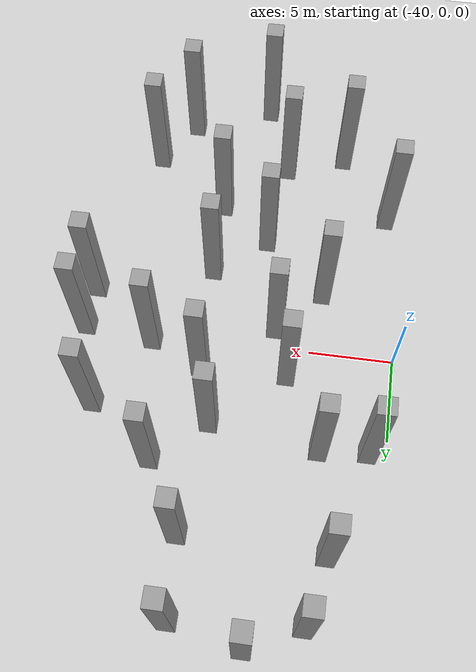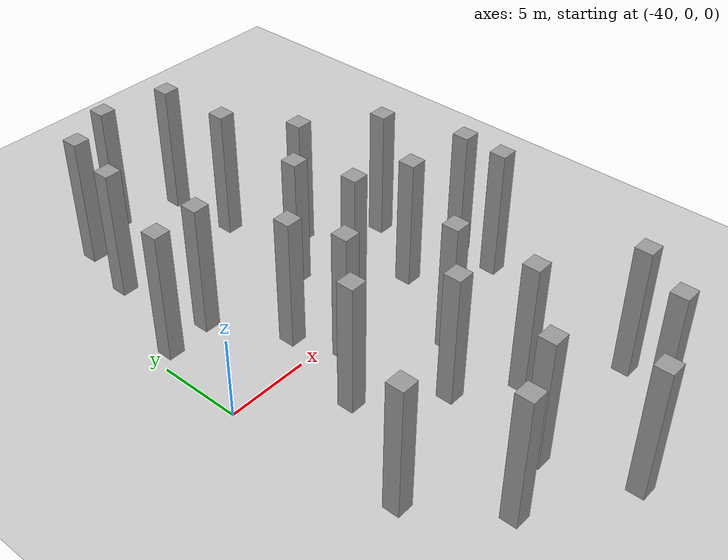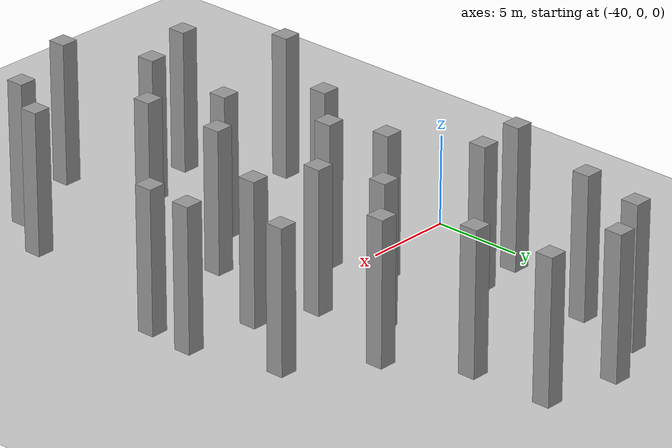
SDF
<sdf version="1.7">
 <world name="default">
  <model name="ground_plane">
   <static>1</static>
   <link name="link">
    <collision name="collision">
     <geometry><plane><normal>0 0 1</normal><size>100 100</size></plane></geometry>
     <surface>
      <contact><collide_bitmask>65535</collide_bitmask></contact>
      <friction><ode><mu>100</mu><mu2>50</mu2></ode></friction>
     </surface>
    </collision>
    <visual name="visual">
     <cast_shadows>0</cast_shadows>
     <geometry><plane><normal>0 0 1</normal><size>100 100</size></plane></geometry>
     <material>
      <script><uri>file://media/materials/scripts/gazebo.material</uri><name>Gazebo/Grey</name></script>
     </material>
    </visual>
   </link>
  </model>
  <model name="unit_box_static12">
   <link name="link">
    <inertial>
     <mass>1</mass>
     <inertia>
      <ixx>0.166667</ixx>
      <ixy>0</ixy>
      <ixz>0</ixz>
      <iyy>0.166667</iyy>
      <iyz>0</iyz>
      <izz>0.166667</izz>
     </inertia>
    </inertial>
    <visual name="visual">
     <geometry><box><size>1 1 8</size></box></geometry>
     <material>
      <script><name>Gazebo/Grey</name><uri>file://media/materials/scripts/gazebo.material</uri></script>
      <shader type="pixel"/>
     </material>
    </visual>
    <collision name="collision">
     <geometry><box><size>1 1 8</size></box></geometry>
     <surface>
      <friction>
       <ode><mu>1</mu><mu2>1</mu2><fdir1>0 0 0</fdir1><slip1>0</slip1><slip2>0</slip2></ode>
       <torsional>
        <coefficient>1</coefficient>
        <patch_radius>0</patch_radius>
        <surface_radius>0</surface_radius>
        <use_patch_radius>1</use_patch_radius>
        <ode><slip>0</slip></ode>
       </torsional>
      </friction>
      <bounce><restitution_coefficient>0</restitution_coefficient><threshold>1e+06</threshold></bounce>
      <contact>
       <collide_without_contact>0</collide_without_contact>
       <collide_without_contact_bitmask>1</collide_without_contact_bitmask>
       <collide_bitmask>1</collide_bitmask>
       <ode>
        <soft_cfm>0</soft_cfm>
        <soft_erp>0.2</soft_erp>
        <kp>1e+13</kp>
        <kd>1</kd>
        <max_vel>0.01</max_vel>
        <min_depth>0</min_depth>
       </ode>
       <bullet>
        <split_impulse>1</split_impulse>
        <split_impulse_penetration_threshold>-0.01</split_impulse_penetration_threshold>
        <soft_cfm>0</soft_cfm>
        <soft_erp>0.2</soft_erp>
        <kp>1e+13</kp>
        <kd>1</kd>
       </bullet>
      </contact>
     </surface>
    </collision>
   </link>
   <static>1</static>
   <pose>-32.8019 -1.19253 4 0 -0 0</pose>
  </model>
  <model name="unit_box_static14">
   <link name="link">
    <inertial>
     <mass>1</mass>
     <inertia>
      <ixx>0.166667</ixx>
      <ixy>0</ixy>
      <ixz>0</ixz>
      <iyy>0.166667</iyy>
      <iyz>0</iyz>
      <izz>0.166667</izz>
     </inertia>
    </inertial>
    <visual name="visual">
     <geometry><box><size>1 1 8</size></box></geometry>
     <material>
      <script><name>Gazebo/Grey</name><uri>file://media/materials/scripts/gazebo.material</uri></script>
      <shader type="pixel"/>
     </material>
    </visual>
    <collision name="collision">
     <geometry><box><size>1 1 8</size></box></geometry>
     <surface>
      <friction>
       <ode><mu>1</mu><mu2>1</mu2><fdir1>0 0 0</fdir1><slip1>0</slip1><slip2>0</slip2></ode>
       <torsional>
        <coefficient>1</coefficient>
        <patch_radius>0</patch_radius>
        <surface_radius>0</surface_radius>
        <use_patch_radius>1</use_patch_radius>
        <ode><slip>0</slip></ode>
       </torsional>
      </friction>
      <bounce><restitution_coefficient>0</restitution_coefficient><threshold>1e+06</threshold></bounce>
      <contact>
       <collide_without_contact>0</collide_without_contact>
       <collide_without_contact_bitmask>1</collide_without_contact_bitmask>
       <collide_bitmask>1</collide_bitmask>
       <ode>
        <soft_cfm>0</soft_cfm>
        <soft_erp>0.2</soft_erp>
        <kp>1e+13</kp>
        <kd>1</kd>
        <max_vel>0.01</max_vel>
        <min_depth>0</min_depth>
       </ode>
       <bullet>
        <split_impulse>1</split_impulse>
        <split_impulse_penetration_threshold>-0.01</split_impulse_penetration_threshold>
        <soft_cfm>0</soft_cfm>
        <soft_erp>0.2</soft_erp>
        <kp>1e+13</kp>
        <kd>1</kd>
       </bullet>
      </contact>
     </surface>
    </collision>
   </link>
   <static>1</static>
   <pose>-36.078 6.13677 4 0 -0 0</pose>
  </model>
  <model name="unit_box_static15">
   <link name="link">
    <inertial>
     <mass>1</mass>
     <inertia>
      <ixx>0.166667</ixx>
      <ixy>0</ixy>
      <ixz>0</ixz>
      <iyy>0.166667</iyy>
      <iyz>0</iyz>
      <izz>0.166667</izz>
     </inertia>
    </inertial>
    <visual name="visual">
     <geometry><box><size>1 1 8</size></box></geometry>
     <material>
      <script><name>Gazebo/Grey</name><uri>file://media/materials/scripts/gazebo.material</uri></script>
      <shader type="pixel"/>
     </material>
    </visual>
    <collision name="collision">
     <geometry><box><size>1 1 8</size></box></geometry>
     <surface>
      <friction>
       <ode><mu>1</mu><mu2>1</mu2><fdir1>0 0 0</fdir1><slip1>0</slip1><slip2>0</slip2></ode>
       <torsional>
        <coefficient>1</coefficient>
        <patch_radius>0</patch_radius>
        <surface_radius>0</surface_radius>
        <use_patch_radius>1</use_patch_radius>
        <ode><slip>0</slip></ode>
       </torsional>
      </friction>
      <bounce><restitution_coefficient>0</restitution_coefficient><threshold>1e+06</threshold></bounce>
      <contact>
       <collide_without_contact>0</collide_without_contact>
       <collide_without_contact_bitmask>1</collide_without_contact_bitmask>
       <collide_bitmask>1</collide_bitmask>
       <ode>
        <soft_cfm>0</soft_cfm>
        <soft_erp>0.2</soft_erp>
        <kp>1e+13</kp>
        <kd>1</kd>
        <max_vel>0.01</max_vel>
        <min_depth>0</min_depth>
       </ode>
       <bullet>
        <split_impulse>1</split_impulse>
        <split_impulse_penetration_threshold>-0.01</split_impulse_penetration_threshold>
        <soft_cfm>0</soft_cfm>
        <soft_erp>0.2</soft_erp>
        <kp>1e+13</kp>
        <kd>1</kd>
       </bullet>
      </contact>
     </surface>
    </collision>
   </link>
   <static>1</static>
   <pose>-38.8814 5.91738 4 0 -0 0</pose>
  </model>
  <model name="unit_box_static28">
   <link name="link">
    <inertial>
     <mass>1</mass>
     <inertia>
      <ixx>0.166667</ixx>
      <ixy>0</ixy>
      <ixz>0</ixz>
      <iyy>0.166667</iyy>
      <iyz>0</iyz>
      <izz>0.166667</izz>
     </inertia>
    </inertial>
    <visual name="visual">
     <geometry><box><size>1 1 8</size></box></geometry>
     <material>
      <script><name>Gazebo/Grey</name><uri>file://media/materials/scripts/gazebo.material</uri></script>
      <shader type="pixel"/>
     </material>
    </visual>
    <collision name="collision">
     <geometry><box><size>1 1 8</size></box></geometry>
     <surface>
      <friction>
       <ode><mu>1</mu><mu2>1</mu2><fdir1>0 0 0</fdir1><slip1>0</slip1><slip2>0</slip2></ode>
       <torsional>
        <coefficient>1</coefficient>
        <patch_radius>0</patch_radius>
        <surface_radius>0</surface_radius>
        <use_patch_radius>1</use_patch_radius>
        <ode><slip>0</slip></ode>
       </torsional>
      </friction>
      <bounce><restitution_coefficient>0</restitution_coefficient><threshold>1e+06</threshold></bounce>
      <contact>
       <collide_without_contact>0</collide_without_contact>
       <collide_without_contact_bitmask>1</collide_without_contact_bitmask>
       <collide_bitmask>1</collide_bitmask>
       <ode>
        <soft_cfm>0</soft_cfm>
        <soft_erp>0.2</soft_erp>
        <kp>1e+13</kp>
        <kd>1</kd>
        <max_vel>0.01</max_vel>
        <min_depth>0</min_depth>
       </ode>
       <bullet>
        <split_impulse>1</split_impulse>
        <split_impulse_penetration_threshold>-0.01</split_impulse_penetration_threshold>
        <soft_cfm>0</soft_cfm>
        <soft_erp>0.2</soft_erp>
        <kp>1e+13</kp>
        <kd>1</kd>
       </bullet>
      </contact>
     </surface>
    </collision>
   </link>
   <static>1</static>
   <pose>-29.1425 16.2735 4 0 -0 0</pose>
  </model>
  <model name="unit_box_static34">
   <link name="link">
    <inertial>
     <mass>1</mass>
     <inertia>
      <ixx>0.166667</ixx>
      <ixy>0</ixy>
      <ixz>0</ixz>
      <iyy>0.166667</iyy>
      <iyz>0</iyz>
      <izz>0.166667</izz>
     </inertia>
    </inertial>
    <visual name="visual">
     <geometry><box><size>1 1 8</size></box></geometry>
     <material>
      <script><name>Gazebo/Grey</name><uri>file://media/materials/scripts/gazebo.material</uri></script>
      <shader type="pixel"/>
     </material>
    </visual>
    <collision name="collision">
     <geometry><box><size>1 1 8</size></box></geometry>
     <surface>
      <friction>
       <ode><mu>1</mu><mu2>1</mu2><fdir1>0 0 0</fdir1><slip1>0</slip1><slip2>0</slip2></ode>
       <torsional>
        <coefficient>1</coefficient>
        <patch_radius>0</patch_radius>
        <surface_radius>0</surface_radius>
        <use_patch_radius>1</use_patch_radius>
        <ode><slip>0</slip></ode>
       </torsional>
      </friction>
      <bounce><restitution_coefficient>0</restitution_coefficient><threshold>1e+06</threshold></bounce>
      <contact>
       <collide_without_contact>0</collide_without_contact>
       <collide_without_contact_bitmask>1</collide_without_contact_bitmask>
       <collide_bitmask>1</collide_bitmask>
       <ode>
        <soft_cfm>0</soft_cfm>
        <soft_erp>0.2</soft_erp>
        <kp>1e+13</kp>
        <kd>1</kd>
        <max_vel>0.01</max_vel>
        <min_depth>0</min_depth>
       </ode>
       <bullet>
        <split_impulse>1</split_impulse>
        <split_impulse_penetration_threshold>-0.01</split_impulse_penetration_threshold>
        <soft_cfm>0</soft_cfm>
        <soft_erp>0.2</soft_erp>
        <kp>1e+13</kp>
        <kd>1</kd>
       </bullet>
      </contact>
     </surface>
    </collision>
   </link>
   <static>1</static>
   <pose>-21.5943 -2.63548 4 0 -0 0</pose>
  </model>
  <model name="unit_box_static35">
   <link name="link">
    <inertial>
     <mass>1</mass>
     <inertia>
      <ixx>0.166667</ixx>
      <ixy>0</ixy>
      <ixz>0</ixz>
      <iyy>0.166667</iyy>
      <iyz>0</iyz>
      <izz>0.166667</izz>
     </inertia>
    </inertial>
    <visual name="visual">
     <geometry><box><size>1 1 8</size></box></geometry>
     <material>
      <script><name>Gazebo/Grey</name><uri>file://media/materials/scripts/gazebo.material</uri></script>
      <shader type="pixel"/>
     </material>
    </visual>
    <collision name="collision">
     <geometry><box><size>1 1 8</size></box></geometry>
     <surface>
      <friction>
       <ode><mu>1</mu><mu2>1</mu2><fdir1>0 0 0</fdir1><slip1>0</slip1><slip2>0</slip2></ode>
       <torsional>
        <coefficient>1</coefficient>
        <patch_radius>0</patch_radius>
        <surface_radius>0</surface_radius>
        <use_patch_radius>1</use_patch_radius>
        <ode><slip>0</slip></ode>
       </torsional>
      </friction>
      <bounce><restitution_coefficient>0</restitution_coefficient><threshold>1e+06</threshold></bounce>
      <contact>
       <collide_without_contact>0</collide_without_contact>
       <collide_without_contact_bitmask>1</collide_without_contact_bitmask>
       <collide_bitmask>1</collide_bitmask>
       <ode>
        <soft_cfm>0</soft_cfm>
        <soft_erp>0.2</soft_erp>
        <kp>1e+13</kp>
        <kd>1</kd>
        <max_vel>0.01</max_vel>
        <min_depth>0</min_depth>
       </ode>
       <bullet>
        <split_impulse>1</split_impulse>
        <split_impulse_penetration_threshold>-0.01</split_impulse_penetration_threshold>
        <soft_cfm>0</soft_cfm>
        <soft_erp>0.2</soft_erp>
        <kp>1e+13</kp>
        <kd>1</kd>
       </bullet>
      </contact>
     </surface>
    </collision>
   </link>
   <static>1</static>
   <pose>-35.425 -3.92188 4 0 -0 0</pose>
  </model>
  <model name="unit_box_static38">
   <link name="link">
    <inertial>
     <mass>1</mass>
     <inertia>
      <ixx>0.166667</ixx>
      <ixy>0</ixy>
      <ixz>0</ixz>
      <iyy>0.166667</iyy>
      <iyz>0</iyz>
      <izz>0.166667</izz>
     </inertia>
    </inertial>
    <visual name="visual">
     <geometry><box><size>1 1 8</size></box></geometry>
     <material>
      <script><name>Gazebo/Grey</name><uri>file://media/materials/scripts/gazebo.material</uri></script>
      <shader type="pixel"/>
     </material>
    </visual>
    <collision name="collision">
     <geometry><box><size>1 1 8</size></box></geometry>
     <surface>
      <friction>
       <ode><mu>1</mu><mu2>1</mu2><fdir1>0 0 0</fdir1><slip1>0</slip1><slip2>0</slip2></ode>
       <torsional>
        <coefficient>1</coefficient>
        <patch_radius>0</patch_radius>
        <surface_radius>0</surface_radius>
        <use_patch_radius>1</use_patch_radius>
        <ode><slip>0</slip></ode>
       </torsional>
      </friction>
      <bounce><restitution_coefficient>0</restitution_coefficient><threshold>1e+06</threshold></bounce>
      <contact>
       <collide_without_contact>0</collide_without_contact>
       <collide_without_contact_bitmask>1</collide_without_contact_bitmask>
       <collide_bitmask>1</collide_bitmask>
       <ode>
        <soft_cfm>0</soft_cfm>
        <soft_erp>0.2</soft_erp>
        <kp>1e+13</kp>
        <kd>1</kd>
        <max_vel>0.01</max_vel>
        <min_depth>0</min_depth>
       </ode>
       <bullet>
        <split_impulse>1</split_impulse>
        <split_impulse_penetration_threshold>-0.01</split_impulse_penetration_threshold>
        <soft_cfm>0</soft_cfm>
        <soft_erp>0.2</soft_erp>
        <kp>1e+13</kp>
        <kd>1</kd>
       </bullet>
      </contact>
     </surface>
    </collision>
   </link>
   <static>1</static>
   <pose>-35.939 -14.3518 4 0 -0 0</pose>
  </model>
  <model name="unit_box_static57">
   <link name="link">
    <inertial>
     <mass>1</mass>
     <inertia>
      <ixx>0.166667</ixx>
      <ixy>0</ixy>
      <ixz>0</ixz>
      <iyy>0.166667</iyy>
      <iyz>0</iyz>
      <izz>0.166667</izz>
     </inertia>
    </inertial>
    <visual name="visual">
     <geometry><box><size>1 1 8</size></box></geometry>
     <material>
      <script><name>Gazebo/Grey</name><uri>file://media/materials/scripts/gazebo.material</uri></script>
      <shader type="pixel"/>
     </material>
    </visual>
    <collision name="collision">
     <geometry><box><size>1 1 8</size></box></geometry>
     <surface>
      <friction>
       <ode><mu>1</mu><mu2>1</mu2><fdir1>0 0 0</fdir1><slip1>0</slip1><slip2>0</slip2></ode>
       <torsional>
        <coefficient>1</coefficient>
        <patch_radius>0</patch_radius>
        <surface_radius>0</surface_radius>
        <use_patch_radius>1</use_patch_radius>
        <ode><slip>0</slip></ode>
       </torsional>
      </friction>
      <bounce><restitution_coefficient>0</restitution_coefficient><threshold>1e+06</threshold></bounce>
      <contact>
       <collide_without_contact>0</collide_without_contact>
       <collide_without_contact_bitmask>1</collide_without_contact_bitmask>
       <collide_bitmask>1</collide_bitmask>
       <ode>
        <soft_cfm>0</soft_cfm>
        <soft_erp>0.2</soft_erp>
        <kp>1e+13</kp>
        <kd>1</kd>
        <max_vel>0.01</max_vel>
        <min_depth>0</min_depth>
       </ode>
       <bullet>
        <split_impulse>1</split_impulse>
        <split_impulse_penetration_threshold>-0.01</split_impulse_penetration_threshold>
        <soft_cfm>0</soft_cfm>
        <soft_erp>0.2</soft_erp>
        <kp>1e+13</kp>
        <kd>1</kd>
       </bullet>
      </contact>
     </surface>
    </collision>
   </link>
   <static>1</static>
   <pose>-39.0012 -9.92582 4 0 -0 0</pose>
  </model>
  <model name="unit_box_static58">
   <link name="link">
    <inertial>
     <mass>1</mass>
     <inertia>
      <ixx>0.166667</ixx>
      <ixy>0</ixy>
      <ixz>0</ixz>
      <iyy>0.166667</iyy>
      <iyz>0</iyz>
      <izz>0.166667</izz>
     </inertia>
    </inertial>
    <visual name="visual">
     <geometry><box><size>1 1 8</size></box></geometry>
     <material>
      <script><name>Gazebo/Grey</name><uri>file://media/materials/scripts/gazebo.material</uri></script>
      <shader type="pixel"/>
     </material>
    </visual>
    <collision name="collision">
     <geometry><box><size>1 1 8</size></box></geometry>
     <surface>
      <friction>
       <ode><mu>1</mu><mu2>1</mu2><fdir1>0 0 0</fdir1><slip1>0</slip1><slip2>0</slip2></ode>
       <torsional>
        <coefficient>1</coefficient>
        <patch_radius>0</patch_radius>
        <surface_radius>0</surface_radius>
        <use_patch_radius>1</use_patch_radius>
        <ode><slip>0</slip></ode>
       </torsional>
      </friction>
      <bounce><restitution_coefficient>0</restitution_coefficient><threshold>1e+06</threshold></bounce>
      <contact>
       <collide_without_contact>0</collide_without_contact>
       <collide_without_contact_bitmask>1</collide_without_contact_bitmask>
       <collide_bitmask>1</collide_bitmask>
       <ode>
        <soft_cfm>0</soft_cfm>
        <soft_erp>0.2</soft_erp>
        <kp>1e+13</kp>
        <kd>1</kd>
        <max_vel>0.01</max_vel>
        <min_depth>0</min_depth>
       </ode>
       <bullet>
        <split_impulse>1</split_impulse>
        <split_impulse_penetration_threshold>-0.01</split_impulse_penetration_threshold>
        <soft_cfm>0</soft_cfm>
        <soft_erp>0.2</soft_erp>
        <kp>1e+13</kp>
        <kd>1</kd>
       </bullet>
      </contact>
     </surface>
    </collision>
   </link>
   <static>1</static>
   <pose>-28.6805 1.87924 4 0 -0 0</pose>
  </model>
  <model name="unit_box_static63">
   <link name="link">
    <inertial>
     <mass>1</mass>
     <inertia>
      <ixx>0.166667</ixx>
      <ixy>0</ixy>
      <ixz>0</ixz>
      <iyy>0.166667</iyy>
      <iyz>0</iyz>
      <izz>0.166667</izz>
     </inertia>
    </inertial>
    <visual name="visual">
     <geometry><box><size>1 1 8</size></box></geometry>
     <material>
      <script><name>Gazebo/Grey</name><uri>file://media/materials/scripts/gazebo.material</uri></script>
      <shader type="pixel"/>
     </material>
    </visual>
    <collision name="collision">
     <geometry><box><size>1 1 8</size></box></geometry>
     <surface>
      <friction>
       <ode><mu>1</mu><mu2>1</mu2><fdir1>0 0 0</fdir1><slip1>0</slip1><slip2>0</slip2></ode>
       <torsional>
        <coefficient>1</coefficient>
        <patch_radius>0</patch_radius>
        <surface_radius>0</surface_radius>
        <use_patch_radius>1</use_patch_radius>
        <ode><slip>0</slip></ode>
       </torsional>
      </friction>
      <bounce><restitution_coefficient>0</restitution_coefficient><threshold>1e+06</threshold></bounce>
      <contact>
       <collide_without_contact>0</collide_without_contact>
       <collide_without_contact_bitmask>1</collide_without_contact_bitmask>
       <collide_bitmask>1</collide_bitmask>
       <ode>
        <soft_cfm>0</soft_cfm>
        <soft_erp>0.2</soft_erp>
        <kp>1e+13</kp>
        <kd>1</kd>
        <max_vel>0.01</max_vel>
        <min_depth>0</min_depth>
       </ode>
       <bullet>
        <split_impulse>1</split_impulse>
        <split_impulse_penetration_threshold>-0.01</split_impulse_penetration_threshold>
        <soft_cfm>0</soft_cfm>
        <soft_erp>0.2</soft_erp>
        <kp>1e+13</kp>
        <kd>1</kd>
       </bullet>
      </contact>
     </surface>
    </collision>
   </link>
   <static>1</static>
   <pose>-28.5384 -4.7785 4 0 -0 0</pose>
  </model>
  <model name="unit_box_static67">
   <link name="link">
    <inertial>
     <mass>1</mass>
     <inertia>
      <ixx>0.166667</ixx>
      <ixy>0</ixy>
      <ixz>0</ixz>
      <iyy>0.166667</iyy>
      <iyz>0</iyz>
      <izz>0.166667</izz>
     </inertia>
    </inertial>
    <visual name="visual">
     <geometry><box><size>1 1 8</size></box></geometry>
     <material>
      <script><name>Gazebo/Grey</name><uri>file://media/materials/scripts/gazebo.material</uri></script>
      <shader type="pixel"/>
     </material>
    </visual>
    <collision name="collision">
     <geometry><box><size>1 1 8</size></box></geometry>
     <surface>
      <friction>
       <ode><mu>1</mu><mu2>1</mu2><fdir1>0 0 0</fdir1><slip1>0</slip1><slip2>0</slip2></ode>
       <torsional>
        <coefficient>1</coefficient>
        <patch_radius>0</patch_radius>
        <surface_radius>0</surface_radius>
        <use_patch_radius>1</use_patch_radius>
        <ode><slip>0</slip></ode>
       </torsional>
      </friction>
      <bounce><restitution_coefficient>0</restitution_coefficient><threshold>1e+06</threshold></bounce>
      <contact>
       <collide_without_contact>0</collide_without_contact>
       <collide_without_contact_bitmask>1</collide_without_contact_bitmask>
       <collide_bitmask>1</collide_bitmask>
       <ode>
        <soft_cfm>0</soft_cfm>
        <soft_erp>0.2</soft_erp>
        <kp>1e+13</kp>
        <kd>1</kd>
        <max_vel>0.01</max_vel>
        <min_depth>0</min_depth>
       </ode>
       <bullet>
        <split_impulse>1</split_impulse>
        <split_impulse_penetration_threshold>-0.01</split_impulse_penetration_threshold>
        <soft_cfm>0</soft_cfm>
        <soft_erp>0.2</soft_erp>
        <kp>1e+13</kp>
        <kd>1</kd>
       </bullet>
      </contact>
     </surface>
    </collision>
   </link>
   <static>1</static>
   <pose>-28.5535 -9.61759 4 0 -0 0</pose>
  </model>
  <model name="unit_box_static71">
   <link name="link">
    <inertial>
     <mass>1</mass>
     <inertia>
      <ixx>0.166667</ixx>
      <ixy>0</ixy>
      <ixz>0</ixz>
      <iyy>0.166667</iyy>
      <iyz>0</iyz>
      <izz>0.166667</izz>
     </inertia>
    </inertial>
    <visual name="visual">
     <geometry><box><size>1 1 8</size></box></geometry>
     <material>
      <script><name>Gazebo/Grey</name><uri>file://media/materials/scripts/gazebo.material</uri></script>
      <shader type="pixel"/>
     </material>
    </visual>
    <collision name="collision">
     <geometry><box><size>1 1 8</size></box></geometry>
     <surface>
      <friction>
       <ode><mu>1</mu><mu2>1</mu2><fdir1>0 0 0</fdir1><slip1>0</slip1><slip2>0</slip2></ode>
       <torsional>
        <coefficient>1</coefficient>
        <patch_radius>0</patch_radius>
        <surface_radius>0</surface_radius>
        <use_patch_radius>1</use_patch_radius>
        <ode><slip>0</slip></ode>
       </torsional>
      </friction>
      <bounce><restitution_coefficient>0</restitution_coefficient><threshold>1e+06</threshold></bounce>
      <contact>
       <collide_without_contact>0</collide_without_contact>
       <collide_without_contact_bitmask>1</collide_without_contact_bitmask>
       <collide_bitmask>1</collide_bitmask>
       <ode>
        <soft_cfm>0</soft_cfm>
        <soft_erp>0.2</soft_erp>
        <kp>1e+13</kp>
        <kd>1</kd>
        <max_vel>0.01</max_vel>
        <min_depth>0</min_depth>
       </ode>
       <bullet>
        <split_impulse>1</split_impulse>
        <split_impulse_penetration_threshold>-0.01</split_impulse_penetration_threshold>
        <soft_cfm>0</soft_cfm>
        <soft_erp>0.2</soft_erp>
        <kp>1e+13</kp>
        <kd>1</kd>
       </bullet>
      </contact>
     </surface>
    </collision>
   </link>
   <static>1</static>
   <pose>-29.695 5.26853 4 0 -0 0</pose>
  </model>
  <model name="unit_box_static74">
   <link name="link">
    <inertial>
     <mass>1</mass>
     <inertia>
      <ixx>0.166667</ixx>
      <ixy>0</ixy>
      <ixz>0</ixz>
      <iyy>0.166667</iyy>
      <iyz>0</iyz>
      <izz>0.166667</izz>
     </inertia>
    </inertial>
    <visual name="visual">
     <geometry><box><size>1 1 8</size></box></geometry>
     <material>
      <script><name>Gazebo/Grey</name><uri>file://media/materials/scripts/gazebo.material</uri></script>
      <shader type="pixel"/>
     </material>
    </visual>
    <collision name="collision">
     <geometry><box><size>1 1 8</size></box></geometry>
     <surface>
      <friction>
       <ode><mu>1</mu><mu2>1</mu2><fdir1>0 0 0</fdir1><slip1>0</slip1><slip2>0</slip2></ode>
       <torsional>
        <coefficient>1</coefficient>
        <patch_radius>0</patch_radius>
        <surface_radius>0</surface_radius>
        <use_patch_radius>1</use_patch_radius>
        <ode><slip>0</slip></ode>
       </torsional>
      </friction>
      <bounce><restitution_coefficient>0</restitution_coefficient><threshold>1e+06</threshold></bounce>
      <contact>
       <collide_without_contact>0</collide_without_contact>
       <collide_without_contact_bitmask>1</collide_without_contact_bitmask>
       <collide_bitmask>1</collide_bitmask>
       <ode>
        <soft_cfm>0</soft_cfm>
        <soft_erp>0.2</soft_erp>
        <kp>1e+13</kp>
        <kd>1</kd>
        <max_vel>0.01</max_vel>
        <min_depth>0</min_depth>
       </ode>
       <bullet>
        <split_impulse>1</split_impulse>
        <split_impulse_penetration_threshold>-0.01</split_impulse_penetration_threshold>
        <soft_cfm>0</soft_cfm>
        <soft_erp>0.2</soft_erp>
        <kp>1e+13</kp>
        <kd>1</kd>
       </bullet>
      </contact>
     </surface>
    </collision>
   </link>
   <static>1</static>
   <pose>-31.6275 -7.28073 4 0 -0 0</pose>
  </model>
  <model name="unit_box_static83">
   <link name="link">
    <inertial>
     <mass>1</mass>
     <inertia>
      <ixx>0.166667</ixx>
      <ixy>0</ixy>
      <ixz>0</ixz>
      <iyy>0.166667</iyy>
      <iyz>0</iyz>
      <izz>0.166667</izz>
     </inertia>
    </inertial>
    <visual name="visual">
     <geometry><box><size>1 1 8</size></box></geometry>
     <material>
      <script><name>Gazebo/Grey</name><uri>file://media/materials/scripts/gazebo.material</uri></script>
      <shader type="pixel"/>
     </material>
    </visual>
    <collision name="collision">
     <geometry><box><size>1 1 8</size></box></geometry>
     <surface>
      <friction>
       <ode><mu>1</mu><mu2>1</mu2><fdir1>0 0 0</fdir1><slip1>0</slip1><slip2>0</slip2></ode>
       <torsional>
        <coefficient>1</coefficient>
        <patch_radius>0</patch_radius>
        <surface_radius>0</surface_radius>
        <use_patch_radius>1</use_patch_radius>
        <ode><slip>0</slip></ode>
       </torsional>
      </friction>
      <bounce><restitution_coefficient>0</restitution_coefficient><threshold>1e+06</threshold></bounce>
      <contact>
       <collide_without_contact>0</collide_without_contact>
       <collide_without_contact_bitmask>1</collide_without_contact_bitmask>
       <collide_bitmask>1</collide_bitmask>
       <ode>
        <soft_cfm>0</soft_cfm>
        <soft_erp>0.2</soft_erp>
        <kp>1e+13</kp>
        <kd>1</kd>
        <max_vel>0.01</max_vel>
        <min_depth>0</min_depth>
       </ode>
       <bullet>
        <split_impulse>1</split_impulse>
        <split_impulse_penetration_threshold>-0.01</split_impulse_penetration_threshold>
        <soft_cfm>0</soft_cfm>
        <soft_erp>0.2</soft_erp>
        <kp>1e+13</kp>
        <kd>1</kd>
       </bullet>
      </contact>
     </surface>
    </collision>
   </link>
   <static>1</static>
   <pose>-33.7989 1.79499 4 0 -0 0</pose>
  </model>
  <model name="unit_box_static84">
   <link name="link">
    <inertial>
     <mass>1</mass>
     <inertia>
      <ixx>0.166667</ixx>
      <ixy>0</ixy>
      <ixz>0</ixz>
      <iyy>0.166667</iyy>
      <iyz>0</iyz>
      <izz>0.166667</izz>
     </inertia>
    </inertial>
    <visual name="visual">
     <geometry><box><size>1 1 8</size></box></geometry>
     <material>
      <script><name>Gazebo/Grey</name><uri>file://media/materials/scripts/gazebo.material</uri></script>
      <shader type="pixel"/>
     </material>
    </visual>
    <collision name="collision">
     <geometry><box><size>1 1 8</size></box></geometry>
     <surface>
      <friction>
       <ode><mu>1</mu><mu2>1</mu2><fdir1>0 0 0</fdir1><slip1>0</slip1><slip2>0</slip2></ode>
       <torsional>
        <coefficient>1</coefficient>
        <patch_radius>0</patch_radius>
        <surface_radius>0</surface_radius>
        <use_patch_radius>1</use_patch_radius>
        <ode><slip>0</slip></ode>
       </torsional>
      </friction>
      <bounce><restitution_coefficient>0</restitution_coefficient><threshold>1e+06</threshold></bounce>
      <contact>
       <collide_without_contact>0</collide_without_contact>
       <collide_without_contact_bitmask>1</collide_without_contact_bitmask>
       <collide_bitmask>1</collide_bitmask>
       <ode>
        <soft_cfm>0</soft_cfm>
        <soft_erp>0.2</soft_erp>
        <kp>1e+13</kp>
        <kd>1</kd>
        <max_vel>0.01</max_vel>
        <min_depth>0</min_depth>
       </ode>
       <bullet>
        <split_impulse>1</split_impulse>
        <split_impulse_penetration_threshold>-0.01</split_impulse_penetration_threshold>
        <soft_cfm>0</soft_cfm>
        <soft_erp>0.2</soft_erp>
        <kp>1e+13</kp>
        <kd>1</kd>
       </bullet>
      </contact>
     </surface>
    </collision>
   </link>
   <static>1</static>
   <pose>-36.1901 15.687 4 0 -0 0</pose>
  </model>
  <model name="unit_box_static87">
   <link name="link">
    <inertial>
     <mass>1</mass>
     <inertia>
      <ixx>0.166667</ixx>
      <ixy>0</ixy>
      <ixz>0</ixz>
      <iyy>0.166667</iyy>
      <iyz>0</iyz>
      <izz>0.166667</izz>
     </inertia>
    </inertial>
    <visual name="visual">
     <geometry><box><size>1 1 8</size></box></geometry>
     <material>
      <script><name>Gazebo/Grey</name><uri>file://media/materials/scripts/gazebo.material</uri></script>
      <shader type="pixel"/>
     </material>
    </visual>
    <collision name="collision">
     <geometry><box><size>1 1 8</size></box></geometry>
     <surface>
      <friction>
       <ode><mu>1</mu><mu2>1</mu2><fdir1>0 0 0</fdir1><slip1>0</slip1><slip2>0</slip2></ode>
       <torsional>
        <coefficient>1</coefficient>
        <patch_radius>0</patch_radius>
        <surface_radius>0</surface_radius>
        <use_patch_radius>1</use_patch_radius>
        <ode><slip>0</slip></ode>
       </torsional>
      </friction>
      <bounce><restitution_coefficient>0</restitution_coefficient><threshold>1e+06</threshold></bounce>
      <contact>
       <collide_without_contact>0</collide_without_contact>
       <collide_without_contact_bitmask>1</collide_without_contact_bitmask>
       <collide_bitmask>1</collide_bitmask>
       <ode>
        <soft_cfm>0</soft_cfm>
        <soft_erp>0.2</soft_erp>
        <kp>1e+13</kp>
        <kd>1</kd>
        <max_vel>0.01</max_vel>
        <min_depth>0</min_depth>
       </ode>
       <bullet>
        <split_impulse>1</split_impulse>
        <split_impulse_penetration_threshold>-0.01</split_impulse_penetration_threshold>
        <soft_cfm>0</soft_cfm>
        <soft_erp>0.2</soft_erp>
        <kp>1e+13</kp>
        <kd>1</kd>
       </bullet>
      </contact>
     </surface>
    </collision>
   </link>
   <static>1</static>
   <pose>-21.4329 0.010353 4 0 -0 0</pose>
  </model>
  <model name="unit_box_static89">
   <link name="link">
    <inertial>
     <mass>1</mass>
     <inertia>
      <ixx>0.166667</ixx>
      <ixy>0</ixy>
      <ixz>0</ixz>
      <iyy>0.166667</iyy>
      <iyz>0</iyz>
      <izz>0.166667</izz>
     </inertia>
    </inertial>
    <visual name="visual">
     <geometry><box><size>1 1 8</size></box></geometry>
     <material>
      <script><name>Gazebo/Grey</name><uri>file://media/materials/scripts/gazebo.material</uri></script>
      <shader type="pixel"/>
     </material>
    </visual>
    <collision name="collision">
     <geometry><box><size>1 1 8</size></box></geometry>
     <surface>
      <friction>
       <ode><mu>1</mu><mu2>1</mu2><fdir1>0 0 0</fdir1><slip1>0</slip1><slip2>0</slip2></ode>
       <torsional>
        <coefficient>1</coefficient>
        <patch_radius>0</patch_radius>
        <surface_radius>0</surface_radius>
        <use_patch_radius>1</use_patch_radius>
        <ode><slip>0</slip></ode>
       </torsional>
      </friction>
      <bounce><restitution_coefficient>0</restitution_coefficient><threshold>1e+06</threshold></bounce>
      <contact>
       <collide_without_contact>0</collide_without_contact>
       <collide_without_contact_bitmask>1</collide_without_contact_bitmask>
       <collide_bitmask>1</collide_bitmask>
       <ode>
        <soft_cfm>0</soft_cfm>
        <soft_erp>0.2</soft_erp>
        <kp>1e+13</kp>
        <kd>1</kd>
        <max_vel>0.01</max_vel>
        <min_depth>0</min_depth>
       </ode>
       <bullet>
        <split_impulse>1</split_impulse>
        <split_impulse_penetration_threshold>-0.01</split_impulse_penetration_threshold>
        <soft_cfm>0</soft_cfm>
        <soft_erp>0.2</soft_erp>
        <kp>1e+13</kp>
        <kd>1</kd>
       </bullet>
      </contact>
     </surface>
    </collision>
   </link>
   <static>1</static>
   <pose>-26.6868 7.81753 4 0 -0 0</pose>
  </model>
  <model name="unit_box_static93">
   <link name="link">
    <inertial>
     <mass>1</mass>
     <inertia>
      <ixx>0.166667</ixx>
      <ixy>0</ixy>
      <ixz>0</ixz>
      <iyy>0.166667</iyy>
      <iyz>0</iyz>
      <izz>0.166667</izz>
     </inertia>
    </inertial>
    <visual name="visual">
     <geometry><box><size>1 1 8</size></box></geometry>
     <material>
      <script><name>Gazebo/Grey</name><uri>file://media/materials/scripts/gazebo.material</uri></script>
      <shader type="pixel"/>
     </material>
    </visual>
    <collision name="collision">
     <geometry><box><size>1 1 8</size></box></geometry>
     <surface>
      <friction>
       <ode><mu>1</mu><mu2>1</mu2><fdir1>0 0 0</fdir1><slip1>0</slip1><slip2>0</slip2></ode>
       <torsional>
        <coefficient>1</coefficient>
        <patch_radius>0</patch_radius>
        <surface_radius>0</surface_radius>
        <use_patch_radius>1</use_patch_radius>
        <ode><slip>0</slip></ode>
       </torsional>
      </friction>
      <bounce><restitution_coefficient>0</restitution_coefficient><threshold>1e+06</threshold></bounce>
      <contact>
       <collide_without_contact>0</collide_without_contact>
       <collide_without_contact_bitmask>1</collide_without_contact_bitmask>
       <collide_bitmask>1</collide_bitmask>
       <ode>
        <soft_cfm>0</soft_cfm>
        <soft_erp>0.2</soft_erp>
        <kp>1e+13</kp>
        <kd>1</kd>
        <max_vel>0.01</max_vel>
        <min_depth>0</min_depth>
       </ode>
       <bullet>
        <split_impulse>1</split_impulse>
        <split_impulse_penetration_threshold>-0.01</split_impulse_penetration_threshold>
        <soft_cfm>0</soft_cfm>
        <soft_erp>0.2</soft_erp>
        <kp>1e+13</kp>
        <kd>1</kd>
       </bullet>
      </contact>
     </surface>
    </collision>
   </link>
   <static>1</static>
   <pose>-25.8008 -15.9007 4 0 -0 0</pose>
  </model>
  <model name="unit_box_static108">
   <link name="link">
    <inertial>
     <mass>1</mass>
     <inertia>
      <ixx>0.166667</ixx>
      <ixy>0</ixy>
      <ixz>0</ixz>
      <iyy>0.166667</iyy>
      <iyz>0</iyz>
      <izz>0.166667</izz>
     </inertia>
    </inertial>
    <visual name="visual">
     <geometry><box><size>1 1 8</size></box></geometry>
     <material>
      <script><name>Gazebo/Grey</name><uri>file://media/materials/scripts/gazebo.material</uri></script>
      <shader type="pixel"/>
     </material>
    </visual>
    <collision name="collision">
     <geometry><box><size>1 1 8</size></box></geometry>
     <surface>
      <friction>
       <ode><mu>1</mu><mu2>1</mu2><fdir1>0 0 0</fdir1><slip1>0</slip1><slip2>0</slip2></ode>
       <torsional>
        <coefficient>1</coefficient>
        <patch_radius>0</patch_radius>
        <surface_radius>0</surface_radius>
        <use_patch_radius>1</use_patch_radius>
        <ode><slip>0</slip></ode>
       </torsional>
      </friction>
      <bounce><restitution_coefficient>0</restitution_coefficient><threshold>1e+06</threshold></bounce>
      <contact>
       <collide_without_contact>0</collide_without_contact>
       <collide_without_contact_bitmask>1</collide_without_contact_bitmask>
       <collide_bitmask>1</collide_bitmask>
       <ode>
        <soft_cfm>0</soft_cfm>
        <soft_erp>0.2</soft_erp>
        <kp>1e+13</kp>
        <kd>1</kd>
        <max_vel>0.01</max_vel>
        <min_depth>0</min_depth>
       </ode>
       <bullet>
        <split_impulse>1</split_impulse>
        <split_impulse_penetration_threshold>-0.01</split_impulse_penetration_threshold>
        <soft_cfm>0</soft_cfm>
        <soft_erp>0.2</soft_erp>
        <kp>1e+13</kp>
        <kd>1</kd>
       </bullet>
      </contact>
     </surface>
    </collision>
   </link>
   <static>1</static>
   <pose>-33.185 17.1316 4 0 -0 0</pose>
  </model>
  <model name="unit_box_static109">
   <link name="link">
    <inertial>
     <mass>1</mass>
     <inertia>
      <ixx>0.166667</ixx>
      <ixy>0</ixy>
      <ixz>0</ixz>
      <iyy>0.166667</iyy>
      <iyz>0</iyz>
      <izz>0.166667</izz>
     </inertia>
    </inertial>
    <visual name="visual">
     <geometry><box><size>1 1 8</size></box></geometry>
     <material>
      <script><name>Gazebo/Grey</name><uri>file://media/materials/scripts/gazebo.material</uri></script>
      <shader type="pixel"/>
     </material>
    </visual>
    <collision name="collision">
     <geometry><box><size>1 1 8</size></box></geometry>
     <surface>
      <friction>
       <ode><mu>1</mu><mu2>1</mu2><fdir1>0 0 0</fdir1><slip1>0</slip1><slip2>0</slip2></ode>
       <torsional>
        <coefficient>1</coefficient>
        <patch_radius>0</patch_radius>
        <surface_radius>0</surface_radius>
        <use_patch_radius>1</use_patch_radius>
        <ode><slip>0</slip></ode>
       </torsional>
      </friction>
      <bounce><restitution_coefficient>0</restitution_coefficient><threshold>1e+06</threshold></bounce>
      <contact>
       <collide_without_contact>0</collide_without_contact>
       <collide_without_contact_bitmask>1</collide_without_contact_bitmask>
       <collide_bitmask>1</collide_bitmask>
       <ode>
        <soft_cfm>0</soft_cfm>
        <soft_erp>0.2</soft_erp>
        <kp>1e+13</kp>
        <kd>1</kd>
        <max_vel>0.01</max_vel>
        <min_depth>0</min_depth>
       </ode>
       <bullet>
        <split_impulse>1</split_impulse>
        <split_impulse_penetration_threshold>-0.01</split_impulse_penetration_threshold>
        <soft_cfm>0</soft_cfm>
        <soft_erp>0.2</soft_erp>
        <kp>1e+13</kp>
        <kd>1</kd>
       </bullet>
      </contact>
     </surface>
    </collision>
   </link>
   <static>1</static>
   <pose>-30.6474 -17.8183 4 0 -0 0</pose>
  </model>
  <model name="unit_box_static110">
   <link name="link">
    <inertial>
     <mass>1</mass>
     <inertia>
      <ixx>0.166667</ixx>
      <ixy>0</ixy>
      <ixz>0</ixz>
      <iyy>0.166667</iyy>
      <iyz>0</iyz>
      <izz>0.166667</izz>
     </inertia>
    </inertial>
    <visual name="visual">
     <geometry><box><size>1 1 8</size></box></geometry>
     <material>
      <script><name>Gazebo/Grey</name><uri>file://media/materials/scripts/gazebo.material</uri></script>
      <shader type="pixel"/>
     </material>
    </visual>
    <collision name="collision">
     <geometry><box><size>1 1 8</size></box></geometry>
     <surface>
      <friction>
       <ode><mu>1</mu><mu2>1</mu2><fdir1>0 0 0</fdir1><slip1>0</slip1><slip2>0</slip2></ode>
       <torsional>
        <coefficient>1</coefficient>
        <patch_radius>0</patch_radius>
        <surface_radius>0</surface_radius>
        <use_patch_radius>1</use_patch_radius>
        <ode><slip>0</slip></ode>
       </torsional>
      </friction>
      <bounce><restitution_coefficient>0</restitution_coefficient><threshold>1e+06</threshold></bounce>
      <contact>
       <collide_without_contact>0</collide_without_contact>
       <collide_without_contact_bitmask>1</collide_without_contact_bitmask>
       <collide_bitmask>1</collide_bitmask>
       <ode>
        <soft_cfm>0</soft_cfm>
        <soft_erp>0.2</soft_erp>
        <kp>1e+13</kp>
        <kd>1</kd>
        <max_vel>0.01</max_vel>
        <min_depth>0</min_depth>
       </ode>
       <bullet>
        <split_impulse>1</split_impulse>
        <split_impulse_penetration_threshold>-0.01</split_impulse_penetration_threshold>
        <soft_cfm>0</soft_cfm>
        <soft_erp>0.2</soft_erp>
        <kp>1e+13</kp>
        <kd>1</kd>
       </bullet>
      </contact>
     </surface>
    </collision>
   </link>
   <static>1</static>
   <pose>-22.8087 4.88119 4 0 -0 0</pose>
  </model>
  <model name="unit_box_static114">
   <link name="link">
    <inertial>
     <mass>1</mass>
     <inertia>
      <ixx>0.166667</ixx>
      <ixy>0</ixy>
      <ixz>0</ixz>
      <iyy>0.166667</iyy>
      <iyz>0</iyz>
      <izz>0.166667</izz>
     </inertia>
    </inertial>
    <visual name="visual">
     <geometry><box><size>1 1 8</size></box></geometry>
     <material>
      <script><name>Gazebo/Grey</name><uri>file://media/materials/scripts/gazebo.material</uri></script>
      <shader type="pixel"/>
     </material>
    </visual>
    <collision name="collision">
     <geometry><box><size>1 1 8</size></box></geometry>
     <surface>
      <friction>
       <ode><mu>1</mu><mu2>1</mu2><fdir1>0 0 0</fdir1><slip1>0</slip1><slip2>0</slip2></ode>
       <torsional>
        <coefficient>1</coefficient>
        <patch_radius>0</patch_radius>
        <surface_radius>0</surface_radius>
        <use_patch_radius>1</use_patch_radius>
        <ode><slip>0</slip></ode>
       </torsional>
      </friction>
      <bounce><restitution_coefficient>0</restitution_coefficient><threshold>1e+06</threshold></bounce>
      <contact>
       <collide_without_contact>0</collide_without_contact>
       <collide_without_contact_bitmask>1</collide_without_contact_bitmask>
       <collide_bitmask>1</collide_bitmask>
       <ode>
        <soft_cfm>0</soft_cfm>
        <soft_erp>0.2</soft_erp>
        <kp>1e+13</kp>
        <kd>1</kd>
        <max_vel>0.01</max_vel>
        <min_depth>0</min_depth>
       </ode>
       <bullet>
        <split_impulse>1</split_impulse>
        <split_impulse_penetration_threshold>-0.01</split_impulse_penetration_threshold>
        <soft_cfm>0</soft_cfm>
        <soft_erp>0.2</soft_erp>
        <kp>1e+13</kp>
        <kd>1</kd>
       </bullet>
      </contact>
     </surface>
    </collision>
   </link>
   <static>1</static>
   <pose>-28.9127 11.792 4 0 -0 0</pose>
  </model>
  <model name="unit_box_static130">
   <link name="link">
    <inertial>
     <mass>1</mass>
     <inertia>
      <ixx>0.166667</ixx>
      <ixy>0</ixy>
      <ixz>0</ixz>
      <iyy>0.166667</iyy>
      <iyz>0</iyz>
      <izz>0.166667</izz>
     </inertia>
    </inertial>
    <visual name="visual">
     <geometry><box><size>1 1 8</size></box></geometry>
     <material>
      <script><name>Gazebo/Grey</name><uri>file://media/materials/scripts/gazebo.material</uri></script>
      <shader type="pixel"/>
     </material>
    </visual>
    <collision name="collision">
     <geometry><box><size>1 1 8</size></box></geometry>
     <surface>
      <friction>
       <ode><mu>1</mu><mu2>1</mu2><fdir1>0 0 0</fdir1><slip1>0</slip1><slip2>0</slip2></ode>
       <torsional>
        <coefficient>1</coefficient>
        <patch_radius>0</patch_radius>
        <surface_radius>0</surface_radius>
        <use_patch_radius>1</use_patch_radius>
        <ode><slip>0</slip></ode>
       </torsional>
      </friction>
      <bounce><restitution_coefficient>0</restitution_coefficient><threshold>1e+06</threshold></bounce>
      <contact>
       <collide_without_contact>0</collide_without_contact>
       <collide_without_contact_bitmask>1</collide_without_contact_bitmask>
       <collide_bitmask>1</collide_bitmask>
       <ode>
        <soft_cfm>0</soft_cfm>
        <soft_erp>0.2</soft_erp>
        <kp>1e+13</kp>
        <kd>1</kd>
        <max_vel>0.01</max_vel>
        <min_depth>0</min_depth>
       </ode>
       <bullet>
        <split_impulse>1</split_impulse>
        <split_impulse_penetration_threshold>-0.01</split_impulse_penetration_threshold>
        <soft_cfm>0</soft_cfm>
        <soft_erp>0.2</soft_erp>
        <kp>1e+13</kp>
        <kd>1</kd>
       </bullet>
      </contact>
     </surface>
    </collision>
   </link>
   <static>1</static>
   <pose>-37.0438 11.9362 4 0 -0 0</pose>
  </model>
  <model name="unit_box_static154">
   <link name="link">
    <inertial>
     <mass>1</mass>
     <inertia>
      <ixx>0.166667</ixx>
      <ixy>0</ixy>
      <ixz>0</ixz>
      <iyy>0.166667</iyy>
      <iyz>0</iyz>
      <izz>0.166667</izz>
     </inertia>
    </inertial>
    <visual name="visual">
     <geometry><box><size>1 1 8</size></box></geometry>
     <material>
      <script><name>Gazebo/Grey</name><uri>file://media/materials/scripts/gazebo.material</uri></script>
      <shader type="pixel"/>
     </material>
    </visual>
    <collision name="collision">
     <geometry><box><size>1 1 8</size></box></geometry>
     <surface>
      <friction>
       <ode><mu>1</mu><mu2>1</mu2><fdir1>0 0 0</fdir1><slip1>0</slip1><slip2>0</slip2></ode>
       <torsional>
        <coefficient>1</coefficient>
        <patch_radius>0</patch_radius>
        <surface_radius>0</surface_radius>
        <use_patch_radius>1</use_patch_radius>
        <ode><slip>0</slip></ode>
       </torsional>
      </friction>
      <bounce><restitution_coefficient>0</restitution_coefficient><threshold>1e+06</threshold></bounce>
      <contact>
       <collide_without_contact>0</collide_without_contact>
       <collide_without_contact_bitmask>1</collide_without_contact_bitmask>
       <collide_bitmask>1</collide_bitmask>
       <ode>
        <soft_cfm>0</soft_cfm>
        <soft_erp>0.2</soft_erp>
        <kp>1e+13</kp>
        <kd>1</kd>
        <max_vel>0.01</max_vel>
        <min_depth>0</min_depth>
       </ode>
       <bullet>
        <split_impulse>1</split_impulse>
        <split_impulse_penetration_threshold>-0.01</split_impulse_penetration_threshold>
        <soft_cfm>0</soft_cfm>
        <soft_erp>0.2</soft_erp>
        <kp>1e+13</kp>
        <kd>1</kd>
       </bullet>
      </contact>
     </surface>
    </collision>
   </link>
   <static>1</static>
   <pose>-25.5664 0.474569 4 0 -0 0</pose>
  </model>
  <model name="unit_box_static167">
   <link name="link">
    <inertial>
     <mass>1</mass>
     <inertia>
      <ixx>0.166667</ixx>
      <ixy>0</ixy>
      <ixz>0</ixz>
      <iyy>0.166667</iyy>
      <iyz>0</iyz>
      <izz>0.166667</izz>
     </inertia>
    </inertial>
    <visual name="visual">
     <geometry><box><size>1 1 8</size></box></geometry>
     <material>
      <script><name>Gazebo/Grey</name><uri>file://media/materials/scripts/gazebo.material</uri></script>
      <shader type="pixel"/>
     </material>
    </visual>
    <collision name="collision">
     <geometry><box><size>1 1 8</size></box></geometry>
     <surface>
      <friction>
       <ode><mu>1</mu><mu2>1</mu2><fdir1>0 0 0</fdir1><slip1>0</slip1><slip2>0</slip2></ode>
       <torsional>
        <coefficient>1</coefficient>
        <patch_radius>0</patch_radius>
        <surface_radius>0</surface_radius>
        <use_patch_radius>1</use_patch_radius>
        <ode><slip>0</slip></ode>
       </torsional>
      </friction>
      <bounce><restitution_coefficient>0</restitution_coefficient><threshold>1e+06</threshold></bounce>
      <contact>
       <collide_without_contact>0</collide_without_contact>
       <collide_without_contact_bitmask>1</collide_without_contact_bitmask>
       <collide_bitmask>1</collide_bitmask>
       <ode>
        <soft_cfm>0</soft_cfm>
        <soft_erp>0.2</soft_erp>
        <kp>1e+13</kp>
        <kd>1</kd>
        <max_vel>0.01</max_vel>
        <min_depth>0</min_depth>
       </ode>
       <bullet>
        <split_impulse>1</split_impulse>
        <split_impulse_penetration_threshold>-0.01</split_impulse_penetration_threshold>
        <soft_cfm>0</soft_cfm>
        <soft_erp>0.2</soft_erp>
        <kp>1e+13</kp>
        <kd>1</kd>
       </bullet>
      </contact>
     </surface>
    </collision>
   </link>
   <static>1</static>
   <pose>-32.3381 -13.06 4 0 -0 0</pose>
  </model>
  <model name="unit_box_static172">
   <link name="link">
    <inertial>
     <mass>1</mass>
     <inertia>
      <ixx>0.166667</ixx>
      <ixy>0</ixy>
      <ixz>0</ixz>
      <iyy>0.166667</iyy>
      <iyz>0</iyz>
      <izz>0.166667</izz>
     </inertia>
    </inertial>
    <visual name="visual">
     <geometry><box><size>1 1 8</size></box></geometry>
     <material>
      <script><name>Gazebo/Grey</name><uri>file://media/materials/scripts/gazebo.material</uri></script>
      <shader type="pixel"/>
     </material>
    </visual>
    <collision name="collision">
     <geometry><box><size>1 1 8</size></box></geometry>
     <surface>
      <friction>
       <ode><mu>1</mu><mu2>1</mu2><fdir1>0 0 0</fdir1><slip1>0</slip1><slip2>0</slip2></ode>
       <torsional>
        <coefficient>1</coefficient>
        <patch_radius>0</patch_radius>
        <surface_radius>0</surface_radius>
        <use_patch_radius>1</use_patch_radius>
        <ode><slip>0</slip></ode>
       </torsional>
      </friction>
      <bounce><restitution_coefficient>0</restitution_coefficient><threshold>1e+06</threshold></bounce>
      <contact>
       <collide_without_contact>0</collide_without_contact>
       <collide_without_contact_bitmask>1</collide_without_contact_bitmask>
       <collide_bitmask>1</collide_bitmask>
       <ode>
        <soft_cfm>0</soft_cfm>
        <soft_erp>0.2</soft_erp>
        <kp>1e+13</kp>
        <kd>1</kd>
        <max_vel>0.01</max_vel>
        <min_depth>0</min_depth>
       </ode>
       <bullet>
        <split_impulse>1</split_impulse>
        <split_impulse_penetration_threshold>-0.01</split_impulse_penetration_threshold>
        <soft_cfm>0</soft_cfm>
        <soft_erp>0.2</soft_erp>
        <kp>1e+13</kp>
        <kd>1</kd>
       </bullet>
      </contact>
     </surface>
    </collision>
   </link>
   <static>1</static>
   <pose>-23.8933 -12.9396 4 0 -0 0</pose>
  </model>
 </world>
</sdf>
